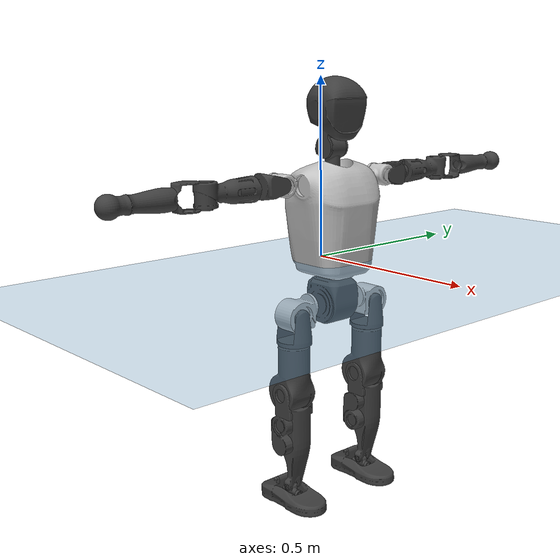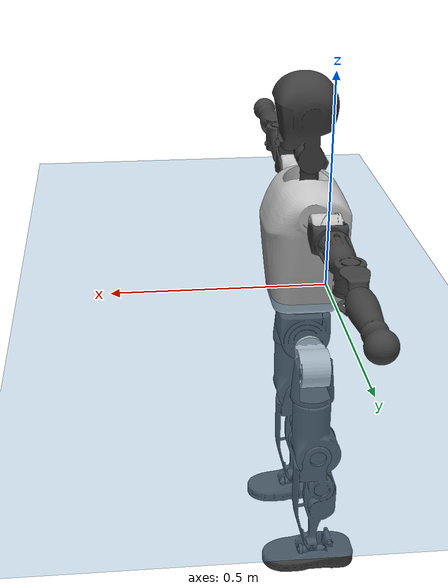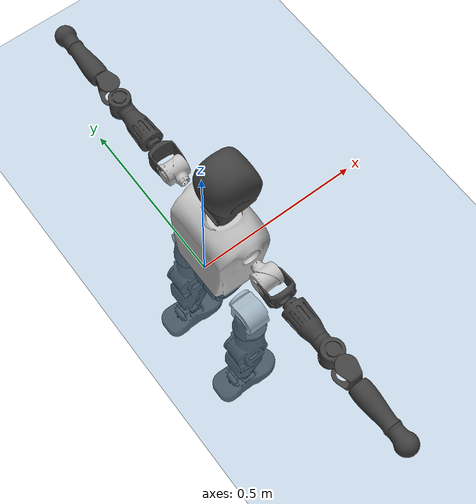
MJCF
<mujoco model="T1">
  <compiler angle="radian" assetdir="assets" balanceinertia="true" inertiafromgeom="false"/>

  <option timestep="0.005" density="1.2" viscosity="2e-05"/>

  <size nkey="1"/>

  <visual>
    <quality shadowsize="8192"/>
    <map shadowclip="0.5"/>
  </visual>

  <default>
    <default class="/">
      <joint armature="0.01" damping="0.01" frictionloss="0.1"/>
      <geom contype="0" conaffinity="0" group="1" solref="-1000 -80"/>
      <site size="0.01 0.005 0.005" group="5"/>
      <general forcelimited="true" biastype="affine" gainprm="25" biasprm="0 -25 -0.6"/>
      <default class="t1">
        <geom rgba="0.25 0.25 0.25 1"/>
        <default class="visual">
          <geom type="mesh" group="2"/>
        </default>
        <default class="collision">
          <geom group="3"/>
        </default>
        <default class="foot">
          <geom size="0.1115 0.05 0.015" type="box" condim="6" group="4" priority="1" solimp="0.015 1 0.015"/>
        </default>
        <default class="reward_collision_sphere">
          <geom group="5" rgba="1 0 0 1"/>
        </default>
      </default>
    </default>
  </default>

  <asset>
    <texture type="skybox" colorspace="auto" name="//unnamed_texture_0" builtin="gradient" rgb1="0.95 0.95 0.95" rgb2="0.95 0.95 0.95" width="100" height="600"/>
    <texture type="2d" colorspace="auto" name="texplane" builtin="checker" rgb1="0.345 0.575 0.748" rgb2="0.345 0.575 0.748" markrgb="1 1 1" width="512" height="512"/>
    <material name="MatPlane" class="/" texture="texplane" texuniform="true" texrepeat="2 2" specular="0.9"/>
    <mesh name="Trunk" class="/" file="Trunk.stl"/>
    <mesh name="H1" class="/" file="H1.stl"/>
    <mesh name="H2" class="/" file="H2.stl"/>
    <mesh name="AL1" class="/" file="AL1.stl"/>
    <mesh name="AL2" class="/" file="AL2.stl"/>
    <mesh name="AL3" class="/" file="AL3.stl"/>
    <mesh name="left_hand_link" class="/" file="left_hand_link.stl"/>
    <mesh name="AR1" class="/" file="AR1.stl"/>
    <mesh name="AR2" class="/" file="AR2.stl"/>
    <mesh name="AR3" class="/" file="AR3.stl"/>
    <mesh name="right_hand_link" class="/" file="right_hand_link.stl"/>
    <mesh name="Waist" class="/" file="Waist.stl"/>
    <mesh name="Hip_Pitch_Left" class="/" file="Hip_Pitch_Left.stl"/>
    <mesh name="Hip_Roll_Left" class="/" file="Hip_Roll_Left.stl"/>
    <mesh name="Hip_Yaw_Left" class="/" file="Hip_Yaw_Left.stl"/>
    <mesh name="Shank_Left" class="/" file="Shank_Left.stl"/>
    <mesh name="Ankle_Cross_Left" class="/" file="Ankle_Cross_Left.stl"/>
    <mesh name="left_foot_link" class="/" file="left_foot_link.stl"/>
    <mesh name="Hip_Pitch_Right" class="/" file="Hip_Pitch_Right.stl"/>
    <mesh name="Hip_Roll_Right" class="/" file="Hip_Roll_Right.stl"/>
    <mesh name="Hip_Yaw_Right" class="/" file="Hip_Yaw_Right.stl"/>
    <mesh name="Shank_Right" class="/" file="Shank_Right.stl"/>
    <mesh name="Ankle_Cross_Right" class="/" file="Ankle_Cross_Right.stl"/>
    <mesh name="right_foot_link" class="/" file="right_foot_link.stl"/>
  </asset>

  <worldbody>
    <geom name="floor" class="/" size="100 100 0.125" type="plane" group="0" material="MatPlane"/>
    <light name="toplight_shadow" class="/" pos="0 0 5" dir="0.0990148 0.0990148 -0.990148" type="directional" ambient="0.04 0.04 0.04" diffuse="0.55 0.55 0.55" specular="0.12 0.12 0.12"/>
    <light name="toplight_fill" class="/" pos="0 0 5" dir="0.0990148 0.0990148 -0.990148" type="directional" castshadow="false" ambient="0.04 0.04 0.04" diffuse="0.3 0.3 0.3" specular="0.08 0.08 0.08"/>
    <body name="trunk" childclass="t1" pos="-0.000287565 -0.00245222 -0.00224305" quat="1 -0.000114355 0.00037708 -3.11486e-05">
      <inertial pos="0.0488735 -0.000334069 0.109767" quat="0.999759 0.000880936 -0.0219188 0.000358573" mass="13.9247" diaginertia="0.0390749 0.324416 0.0624344"/>
      <joint name="//unnamed_joint_0" type="free" armature="0" damping="0" frictionloss="0"/>
      <geom name="//unnamed_geom_1" class="visual" rgba="0.76 0.76 0.76 1" mesh="Trunk"/>
      <geom name="//unnamed_geom_2" class="collision" size="0.0807471 0.107663 0.161494" pos="0.0509671 0 0.124195" type="box"/>
      <geom name="//unnamed_geom_3" class="reward_collision_sphere" size="0.123812" pos="0.0509671 0 0.103496"/>
      <geom name="//unnamed_geom_4" class="reward_collision_sphere" size="0.0161494" pos="0.0509671 0.114365 0"/>
      <geom name="//unnamed_geom_5" class="reward_collision_sphere" size="0.0161494" pos="0.0509671 -0.114365 0"/>
      <geom name="//unnamed_geom_6" class="reward_collision_sphere" size="0.0161494" pos="0.0509671 0.143965 0.186293"/>
      <geom name="//unnamed_geom_7" class="reward_collision_sphere" size="0.0161494" pos="0.0509671 -0.143965 0.186293"/>
      <site name="imu" pos="-0.0139417 -0.0139429 0.00807619" size="0.0107663"/>
      <camera name="track" pos="0 -2.69094 0" quat="0.707107 0.707107 0 0" mode="trackcom"/>
      <camera name="ego_camera" pos="0.103633 0 0.434683" quat="-0.5 -0.5 0.5 0.5"/>
      <body name="H1" pos="0.0497866 -0.00154965 0.252509" quat="1 -0.000140292 -2.37931e-05 -0.000117486">
        <inertial pos="-0.000655324 -0.0023402 0.0588126" quat="0.765446 -0.0084643 -0.00181027 0.643441" mass="0.545789" diaginertia="0.00010732 0.000968812 0.00017623"/>
        <joint name="AAHead_yaw" pos="0 0 0" axis="0.00187684 0.0122377 0.999923" range="-1.56629 1.55306" armature="0.0113701" damping="0.0228863" frictionloss="0.111826"/>
        <geom name="//unnamed_geom_8" class="visual" mesh="H1"/>
        <body name="H2" pos="0.000446952 -0.00257057 0.0620772" quat="1 0.00014304 0.000235169 -0.000349496">
          <inertial pos="0.00350384 0.000875163 0.0998531" quat="0.988771 0.104615 -0.0718413 -0.0789104" mass="0.781173" diaginertia="0.000900228 0.00838345 0.00207785"/>
          <joint name="Head_pitch" pos="0 0 0" axis="-0.00226535 -0.999986 0.00480048" range="-1.20107 0.341096" armature="0.0106143" damping="0.00957819" frictionloss="0.0935177"/>
          <geom name="//unnamed_geom_9" class="visual" mesh="H2"/>
          <geom name="//unnamed_geom_10" class="collision" size="0.0861302" pos="0.00849451 0 0.113846"/>
          <geom name="//unnamed_geom_11" class="reward_collision_sphere" size="0.0968965" pos="0.016989 0 0.103496"/>
        </body>
      </body>
      <body name="AL1" pos="0.0470438 0.142501 0.224125" quat="1 0.00020855 0.000490734 0.000466658">
        <inertial pos="-0.000557474 0.057575 -0.00288314" quat="0.503426 0.495871 -0.506513 0.494084" mass="0.673336" diaginertia="0.000626019 0.0057898 0.00034568"/>
        <joint name="Left_Shoulder_Pitch" pos="0 0 0" axis="-0.00220565 0.999998 -0.000146727" range="-3.28072 1.25209" armature="0.0106839" damping="0" frictionloss="0.108781"/>
        <geom name="//unnamed_geom_12" class="visual" rgba="0.76 0.76 0.76 1" mesh="AL1"/>
        <body name="AL2" pos="0.00105005 0.0650618 -0.00261603" quat="0.999999 -0.000469129 -0.00106194 -0.000359349">
          <inertial pos="0.0040815 0.0509092 0.0026843" quat="0.489504 0.511591 -0.486001 0.512311" mass="0.204301" diaginertia="0.00017363 0.0015035 0.000209766"/>
          <joint name="Left_Shoulder_Roll" pos="0 0 0" axis="-0.99999 -0.00144479 0.00415908" range="-1.57923 1.73563" armature="0.0116851" damping="0.00670118" frictionloss="0.102264"/>
          <geom name="//unnamed_geom_13" class="visual" mesh="AL2"/>
          <body name="AL3" pos="0.000339821 0.0809335 0.00322664" quat="1 0.000398213 -0.000307476 8.60403e-05">
            <inertial pos="-0.00055623 0.113847 -0.00290761" quat="0.71235 0.701756 -0.00820285 -0.00528318" mass="1.33668" diaginertia="0.00568496 0.0581786 0.000770823"/>
            <joint name="Left_Elbow_Pitch" pos="0 0 0" axis="-0.0115576 -0.999911 -0.0066371" stiffness="0.008194" range="-2.26645 2.28257" armature="0.0105419" damping="0.0228181" frictionloss="0.11155"/>
            <geom name="//unnamed_geom_14" class="visual" mesh="AL3"/>
            <geom name="//unnamed_geom_15" class="collision" size="0.0322988 0.0807471" pos="0 0.0672736 0" quat="0.707105 0.707108 0 0" type="cylinder"/>
            <geom name="//unnamed_geom_16" class="reward_collision_sphere" size="0.0387586"/>
            <body name="left_hand_link" pos="0.00293596 0.198834 -9.85127e-06" quat="1 -3.91433e-05 6.40638e-05 -0.000150431">
              <inertial pos="-0.000867693 0.14772 -0.000337663" quat="0.711868 0.702273 -0.00748419 0.00126457" mass="0.411257" diaginertia="0.00353652 0.036337 0.000255893"/>
              <joint name="Left_Elbow_Yaw" pos="0 0 0" axis="-0.00589915 0.00441526 0.999973" range="-2.45726 0.0193665" armature="0.0105268" damping="0.01282" frictionloss="0.118202"/>
              <geom name="//unnamed_geom_17" class="visual" mesh="left_hand_link"/>
              <geom name="//unnamed_geom_18" class="collision" size="0.0322988 0.0942049" pos="0 0.174911 0" quat="0.707105 0.707108 0 0" type="cylinder"/>
              <geom name="//unnamed_geom_19" class="reward_collision_sphere" size="0.0538314"/>
              <geom name="//unnamed_geom_20" class="reward_collision_sphere" size="0.037682" pos="0 0.148002 0"/>
              <geom name="//unnamed_geom_21" class="reward_collision_sphere" size="0.037682" pos="0 0.289276 0"/>
            </body>
          </body>
        </body>
      </body>
      <body name="AR1" pos="0.0514905 -0.142627 0.226297" quat="0.999999 0.000683266 0.000607574 0.000974704">
        <inertial pos="-0.00351663 -0.0602901 -0.000681947" quat="0.504707 0.493837 -0.503332 0.498049" mass="0.69573" diaginertia="0.000626575 0.00609328 0.000369909"/>
        <joint name="Right_Shoulder_Pitch" pos="0 0 0" axis="0.00793205 -0.999961 -0.00386249" stiffness="0.000899934" range="-1.23303 3.32014" armature="0.0106547" damping="0.00289785" frictionloss="0.106544"/>
        <geom name="//unnamed_geom_22" class="visual" rgba="0.76 0.76 0.76 1" mesh="AR1"/>
        <body name="AR2" pos="0.000289237 -0.0621245 0.0026478" quat="1 -9.37727e-05 0.00015023 2.36679e-05">
          <inertial pos="0.000356622 -0.0505929 0.0010561" quat="0.513089 0.488118 -0.509219 0.489057" mass="0.203695" diaginertia="0.000188928 0.00156807 0.000223155"/>
          <joint name="Right_Shoulder_Roll" pos="0 0 0" axis="-0.999999 0.00101576 -0.000106027" range="-1.73557 1.58125" armature="0.0109066" damping="0.00954154" frictionloss="0.11648"/>
          <geom name="//unnamed_geom_23" class="visual" mesh="AR2"/>
          <body name="AR3" pos="0.00269903 -0.0789206 -0.0028157" quat="0.999999 0.00112776 -0.00085203 -0.000412501">
            <inertial pos="0.00180797 -0.114283 -0.00124933" quat="0.708637 0.705451 0.0129446 0.00221861" mass="1.31649" diaginertia="0.00589676 0.0584409 0.000740826"/>
            <joint name="Right_Elbow_Pitch" pos="0 0 0" axis="-0.00625713 0.99993 0.0100071" range="-2.27032 2.30883" armature="0.0105148" damping="0.0123454" frictionloss="0.112027"/>
            <geom name="//unnamed_geom_24" class="visual" mesh="AR3"/>
            <geom name="//unnamed_geom_25" class="collision" size="0.0322988 0.0807471" pos="0 -0.0672736 0" quat="0.707105 0.707108 0 0" type="cylinder"/>
            <geom name="//unnamed_geom_26" class="reward_collision_sphere" size="0.0387586"/>
            <body name="right_hand_link" pos="-0.00115658 -0.19627 -0.000336615" quat="0.999999 0.000541101 -0.0012195 -2.91239e-05">
              <inertial pos="-0.000558272 -0.144956 0.00312322" quat="0.707456 0.706736 0.00216709 0.00501538" mass="0.412815" diaginertia="0.00378224 0.0376405 0.000255016"/>
              <joint name="Right_Elbow_Yaw" pos="0 0 0" axis="0.00369462 0.000803571 0.999993" range="0.0487595 2.45189" armature="0.0112065" damping="0.00494066" frictionloss="0.110296"/>
              <geom name="//unnamed_geom_27" class="visual" mesh="right_hand_link"/>
              <geom name="//unnamed_geom_28" class="collision" size="0.0322988 0.0942049" pos="0 -0.174911 0" quat="0.707105 0.707108 0 0" type="cylinder"/>
              <geom name="//unnamed_geom_29" class="reward_collision_sphere" size="0.0538314"/>
              <geom name="//unnamed_geom_30" class="reward_collision_sphere" size="0.037682" pos="0 -0.148002 0"/>
              <geom name="//unnamed_geom_31" class="reward_collision_sphere" size="0.037682" pos="0 -0.289276 0"/>
            </body>
          </body>
        </body>
      </body>
      <body name="Waist" pos="0.0496176 -0.00229161 -0.118575" quat="0.999999 -0.000368283 0.000625311 0.000979329">
        <inertial pos="0.00282705 0.000797677 0.00837444" quat="0.983436 0.000170524 -0.181254 0.00110393" mass="3.02464" diaginertia="0.00229996 0.0228443 0.00559947"/>
        <joint name="Waist" pos="0 0 0" axis="0.0030776 0.0120199 0.999923" range="-1.6259 1.57092" armature="0.0119697" damping="0.0235939" frictionloss="0.107592"/>
        <geom name="//unnamed_geom_32" class="visual" mesh="Waist"/>
        <body name="Hip_Pitch_Left" pos="0.000689828 0.144695 6.60078e-05" quat="1 9.90235e-05 0.000570184 -0.000226366">
          <inertial pos="0.00129307 -0.00803305 -0.0163843" quat="0.975436 0.219851 0.00582973 0.0125189" mass="1.27937" diaginertia="0.000801697 0.00662927 0.00149221"/>
          <joint name="Left_Hip_Pitch" pos="0 0 0" axis="-0.00547538 0.99998 0.003099" stiffness="0.0098217" range="-1.80022 1.58364" armature="0.0109359" damping="0.0243827" frictionloss="0.12057"/>
          <geom name="//unnamed_geom_33" class="visual" rgba="0.76 0.76 0.76 1" mesh="Hip_Pitch_Left"/>
          <body name="Hip_Roll_Left" pos="0.000229942 -0.00321599 -0.0224422" quat="1 -0.000153647 0.000342132 0.000511017">
            <inertial pos="-0.00193247 -0.000505157 -0.0527048" quat="0.706808 -0.0056863 -0.00608801 0.707356" mass="0.49338" diaginertia="0.000776207 0.00713262 0.000633377"/>
            <joint name="Left_Hip_Roll" pos="0 0 0" axis="-0.99998 -0.0059477 -0.00216017" stiffness="0.00429082" range="-1.56556 0.221986" armature="0.0111469" damping="0" frictionloss="0.092608"/>
            <geom name="//unnamed_geom_34" class="visual" mesh="Hip_Roll_Left"/>
            <geom name="//unnamed_geom_35" class="reward_collision_sphere" size="0.0592145"/>
            <body name="Hip_Yaw_Left" pos="-0.00276328 0.000802995 -0.085914" quat="1 1.52649e-05 0.000154454 -7.73962e-05">
              <inertial pos="-0.00745722 0.00196409 -0.0932771" quat="0.696651 -0.0329157 -0.032167 0.715932" mass="2.66656" diaginertia="0.0116123 0.112111 0.00314275"/>
              <joint name="Left_Hip_Yaw" pos="0 0 0" axis="-0.000491194 -0.000634497 -1" range="-1.06356 1.02603" armature="0.0105524" damping="0" frictionloss="0.105914"/>
              <geom name="//unnamed_geom_36" class="visual" mesh="Hip_Yaw_Left"/>
              <geom name="//unnamed_geom_37" class="collision" size="0.0538314 0.0861302" type="cylinder"/>
              <body name="Shank_Left" pos="-0.0121941 -0.000425286 -0.13594" quat="1 3.28117e-05 -7.62238e-05 -2.20656e-05">
                <inertial pos="-0.0061134 0.00188204 -0.127588" quat="0.997516 0.00156763 -0.0239636 0.0662138" mass="2.20476" diaginertia="0.0156351 0.154508 0.00227662"/>
                <joint name="Left_Knee_Pitch" pos="0 0 0" axis="0.000940034 0.999972 0.00742295" stiffness="0.00862447" range="0.0542389 2.28363" armature="0.0105322" damping="0.0156001" frictionloss="0.100862"/>
                <geom name="//unnamed_geom_38" class="visual" mesh="Shank_Left"/>
                <geom name="//unnamed_geom_39" class="collision" size="0.0538314 0.0807471" pos="0 0 -0.124195" type="cylinder"/>
                <geom name="//unnamed_geom_40" class="reward_collision_sphere" size="0.0699808"/>
                <body name="Ankle_Cross_Left" pos="0.00158714 -0.000283268 -0.288821" quat="1 -8.53715e-06 2.16203e-05 -6.05051e-05">
                  <inertial pos="-0.00570745 0.00235074 -0.00548035" quat="0.434423 0.550103 0.555307 0.447545" mass="0.093804" diaginertia="1.31438e-05 0.00010995 1.3486e-05"/>
                  <joint name="Left_Ankle_Pitch" pos="0 0 0" axis="0.000912186 1 -0.000356079" range="-0.855921 0.362801" armature="0.00939851" damping="0" frictionloss="0.118472"/>
                  <geom name="//unnamed_geom_41" class="visual" mesh="Ankle_Cross_Left"/>
                  <body name="left_foot_link" pos="-0.00365113 -0.00232834 -0.0125247" quat="0.999999 2.05257e-05 0.000715109 0.00111713">
                    <inertial pos="-0.00238371 -0.000189115 -0.011135" quat="-0.00565833 0.626688 -0.0039386 0.779239" mass="0.830904" diaginertia="0.00115875 0.0106994 0.00253334"/>
                    <joint name="Left_Ankle_Roll" pos="0 0 0" axis="-1 0.000418397 -0.000618036" range="-0.453462 0.442745" armature="0.0108465" damping="0" frictionloss="0.107101"/>
                    <geom name="//unnamed_geom_42" class="visual" mesh="left_foot_link"/>
                    <geom name="left_foot" class="foot" size="0.116766 0.0472486 0.0152616" pos="0.00849451 0 -0.0155244"/>
                    <geom name="//unnamed_geom_44" class="reward_collision_sphere" size="0.0559846" pos="0.00849451 0 -0.0155244"/>
                    <geom name="//unnamed_geom_45" class="reward_collision_sphere" size="0.0322988" pos="0.0806978 -0.0309458 -0.0155244"/>
                    <geom name="//unnamed_geom_46" class="reward_collision_sphere" size="0.0322988" pos="-0.0594616 -0.0309458 -0.0155244"/>
                    <site name="left_foot" class="foot" pos="0.00849451 0 -0.0155244" size="0.0107663"/>
                  </body>
                </body>
              </body>
            </body>
          </body>
        </body>
        <body name="Hip_Pitch_Right" pos="0.000287271 -0.140731 0.00245803" quat="1 -3.0505e-05 9.4449e-05 -0.000345273">
          <inertial pos="-0.00153153 0.00799259 -0.0172683" quat="0.973514 -0.228297 0.0113176 0.00469784" mass="1.31067" diaginertia="0.000823038 0.00650576 0.00154256"/>
          <joint name="Right_Hip_Pitch" pos="0 0 0" axis="0.0016218 -0.999995 0.00256883" stiffness="0.0042624" range="-1.56731 1.80354" armature="0.00938805" damping="0.0120883" frictionloss="0.110413"/>
          <geom name="//unnamed_geom_47" class="visual" rgba="0.76 0.76 0.76 1" mesh="Hip_Pitch_Right"/>
          <body name="Hip_Roll_Right" pos="-8.91078e-05 -0.00121299 -0.0221677" quat="0.999999 -5.44388e-06 -0.000826192 -0.00132749">
            <inertial pos="0.00142498 0.00233544 -0.0528877" quat="0.706965 -0.00619573 -0.0063546 0.707193" mass="0.460771" diaginertia="0.000768848 0.00673574 0.000600898"/>
            <joint name="Right_Hip_Roll" pos="0 0 0" axis="-0.999998 0.0022166 0.000293984" range="-0.213095 1.53777" armature="0.0108955" damping="0.0136524" frictionloss="0.122769"/>
            <geom name="//unnamed_geom_48" class="visual" mesh="Hip_Roll_Right"/>
            <geom name="//unnamed_geom_49" class="reward_collision_sphere" size="0.0592145"/>
            <body name="Hip_Yaw_Right" pos="-0.00188454 -0.00183503 -0.0840876" quat="1 -0.000101298 -0.000162211 4.348e-05">
              <inertial pos="-0.00640256 -0.00294508 -0.092889" quat="0.715 -0.0357991 -0.0231556 0.697823" mass="2.80212" diaginertia="0.0114965 0.118073 0.00303955"/>
              <joint name="Right_Hip_Yaw" pos="0 0 0" axis="-0.00318763 -0.00159173 -0.999994" range="-1.00083 1.03229" armature="0.0115343" damping="0.0141317" frictionloss="0.108619"/>
              <geom name="//unnamed_geom_50" class="visual" mesh="Hip_Yaw_Right"/>
              <geom name="//unnamed_geom_51" class="collision" size="0.0538314 0.0861302" type="cylinder"/>
              <body name="Shank_Right" pos="-0.0132263 0.000363552 -0.137971" quat="0.999999 0.000358688 -0.000333405 -0.00126417">
                <inertial pos="-0.00602429 -0.000165164 -0.128955" quat="0.99934 4.27942e-05 -0.0211972 -0.029491" mass="2.22989" diaginertia="0.0151137 0.147754 0.00234814"/>
                <joint name="Right_Knee_Pitch" pos="0 0 0" axis="-0.00332457 -0.999966 0.00748623" stiffness="0.00887243" range="-2.32532 0.0408656" armature="0.0108341" damping="0.0191192" frictionloss="0.107884"/>
                <geom name="//unnamed_geom_52" class="visual" mesh="Shank_Right"/>
                <geom name="//unnamed_geom_53" class="collision" size="0.0538314 0.0807471" pos="0 0 -0.124195" type="cylinder"/>
                <geom name="//unnamed_geom_54" class="reward_collision_sphere" size="0.0699808"/>
                <body name="Ankle_Cross_Right" pos="-0.00194484 0.00132082 -0.28794" quat="1 -0.000209277 0.000236752 -6.02636e-06">
                  <inertial pos="-0.00297465 -0.00241818 -0.00817477" quat="0.433449 0.549644 0.555051 0.449369" mass="0.0965757" diaginertia="1.30547e-05 0.000115669 1.43526e-05"/>
                  <joint name="Right_Ankle_Pitch" pos="0 0 0" axis="0.00888044 -0.999916 0.0094863" range="-0.379397 0.843582" armature="0.0108091" damping="0.00953838" frictionloss="0.101372"/>
                  <geom name="//unnamed_geom_55" class="visual" mesh="Ankle_Cross_Right"/>
                  <body name="right_foot_link" pos="0.000756252 -0.000649752 -0.0143423" quat="1 -7.73355e-05 1.20531e-05 -3.72099e-05">
                    <inertial pos="-4.59022e-05 -0.00138634 -0.00900553" quat="-0.00105686 0.620852 0.00181376 0.783925" mass="0.849166" diaginertia="0.00117173 0.0101146 0.00253917"/>
                    <joint name="Right_Ankle_Roll" pos="0 0 0" axis="-0.999938 0.0108632 -0.00232528" range="-0.445834 0.443657" armature="0.0104786" damping="0.00660374" frictionloss="0.108203"/>
                    <geom name="//unnamed_geom_56" class="visual" mesh="right_foot_link"/>
                    <geom name="right_foot" class="foot" size="0.106414 0.0458513 0.0146396" pos="0.00849451 0 -0.0155244"/>
                    <geom name="//unnamed_geom_58" class="reward_collision_sphere" size="0.0430651"/>
                    <geom name="//unnamed_geom_59" class="reward_collision_sphere" size="0.0322988" pos="0.00849451 0 -0.0155244"/>
                    <geom name="//unnamed_geom_60" class="reward_collision_sphere" size="0.0322988" pos="0.0806978 0.0309458 -0.0155244"/>
                    <geom name="//unnamed_geom_61" class="reward_collision_sphere" size="0.0322988" pos="-0.0594616 0.0309458 -0.0155244"/>
                    <site name="right_foot" class="foot" pos="0.00849451 0 -0.0155244" size="0.0107663"/>
                  </body>
                </body>
              </body>
            </body>
          </body>
        </body>
      </body>
    </body>
  </worldbody>

  <contact>
    <pair class="/" geom1="floor" geom2="left_foot" name="//unnamed_contact_0"/>
    <pair class="/" geom1="floor" geom2="right_foot" name="//unnamed_contact_1"/>
  </contact>

  <actuator>
    <general name="AAHead_yaw" class="/" joint="AAHead_yaw" forcerange="-8.07481 8.07481" gainprm="25.2551" biasprm="0 -25.2551 -0.619808"/>
    <general name="Head_pitch" class="/" joint="Head_pitch" forcerange="-7.45191 7.45191" gainprm="25.2551" biasprm="0 -25.2551 -0.619808"/>
    <general name="Left_Shoulder_Pitch" class="/" joint="Left_Shoulder_Pitch" forcerange="-17.1968 17.1968" gainprm="25.2551" biasprm="0 -25.2551 -0.619808"/>
    <general name="Left_Shoulder_Roll" class="/" joint="Left_Shoulder_Roll" forcerange="-17.6703 17.6703" gainprm="25.2551" biasprm="0 -25.2551 -0.619808"/>
    <general name="Left_Elbow_Pitch" class="/" joint="Left_Elbow_Pitch" forcerange="-19.7347 19.7347" gainprm="25.2551" biasprm="0 -25.2551 -0.619808"/>
    <general name="Left_Elbow_Yaw" class="/" joint="Left_Elbow_Yaw" forcerange="-17.9627 17.9627" gainprm="25.2551" biasprm="0 -25.2551 -0.619808"/>
    <general name="Right_Shoulder_Pitch" class="/" joint="Right_Shoulder_Pitch" forcerange="-21.2988 21.2988" gainprm="25.2551" biasprm="0 -25.2551 -0.619808"/>
    <general name="Right_Shoulder_Roll" class="/" joint="Right_Shoulder_Roll" forcerange="-17.3397 17.3397" gainprm="25.2551" biasprm="0 -25.2551 -0.619808"/>
    <general name="Right_Elbow_Pitch" class="/" joint="Right_Elbow_Pitch" forcerange="-19.8336 19.8336" gainprm="25.2551" biasprm="0 -25.2551 -0.619808"/>
    <general name="Right_Elbow_Yaw" class="/" joint="Right_Elbow_Yaw" forcerange="-20.9534 20.9534" gainprm="25.2551" biasprm="0 -25.2551 -0.619808"/>
    <general name="Waist" class="/" joint="Waist" forcerange="-35.7197 35.7197" gainprm="25.2551" biasprm="0 -25.2551 -0.619808"/>
    <general name="Left_Hip_Pitch" class="/" joint="Left_Hip_Pitch" forcerange="-46.7741 46.7741" gainprm="25.2551" biasprm="0 -25.2551 -0.619808"/>
    <general name="Left_Hip_Roll" class="/" joint="Left_Hip_Roll" forcerange="-34.845 34.845" gainprm="25.2551" biasprm="0 -25.2551 -0.619808"/>
    <general name="Left_Hip_Yaw" class="/" joint="Left_Hip_Yaw" forcerange="-30.1832 30.1832" gainprm="25.2551" biasprm="0 -25.2551 -0.619808"/>
    <general name="Left_Knee_Pitch" class="/" joint="Left_Knee_Pitch" forcerange="-64.1176 64.1176" gainprm="25.2551" biasprm="0 -25.2551 -0.619808"/>
    <general name="Left_Ankle_Pitch" class="/" joint="Left_Ankle_Pitch" forcerange="-21.6588 21.6588" gainprm="25.2551" biasprm="0 -25.2551 -0.619808"/>
    <general name="Left_Ankle_Roll" class="/" joint="Left_Ankle_Roll" forcerange="-16.9373 16.9373" gainprm="25.2551" biasprm="0 -25.2551 -0.619808"/>
    <general name="Right_Hip_Pitch" class="/" joint="Right_Hip_Pitch" forcerange="-48.3042 48.3042" gainprm="25.2551" biasprm="0 -25.2551 -0.619808"/>
    <general name="Right_Hip_Roll" class="/" joint="Right_Hip_Roll" forcerange="-31.765 31.765" gainprm="25.2551" biasprm="0 -25.2551 -0.619808"/>
    <general name="Right_Hip_Yaw" class="/" joint="Right_Hip_Yaw" forcerange="-32.6702 32.6702" gainprm="25.2551" biasprm="0 -25.2551 -0.619808"/>
    <general name="Right_Knee_Pitch" class="/" joint="Right_Knee_Pitch" forcerange="-64.5522 64.5522" gainprm="25.2551" biasprm="0 -25.2551 -0.619808"/>
    <general name="Right_Ankle_Pitch" class="/" joint="Right_Ankle_Pitch" forcerange="-20.8794 20.8794" gainprm="25.2551" biasprm="0 -25.2551 -0.619808"/>
    <general name="Right_Ankle_Roll" class="/" joint="Right_Ankle_Roll" forcerange="-14.4935 14.4935" gainprm="25.2551" biasprm="0 -25.2551 -0.619808"/>
  </actuator>

  <sensor>
    <gyro site="imu" name="imu_angular_velocity"/>
    <velocimeter site="imu" name="imu_linear_velocity"/>
    <framelinvel objtype="site" objname="left_foot" name="left_foot_global_linear_velocity"/>
    <framelinvel objtype="site" objname="right_foot" name="right_foot_global_linear_velocity"/>
  </sensor>

  <keyframe>
    <key name="home" qpos="0 0 0.6385 1 0 0 0 0 0 0 1.4 0 -0.4 0 -1.4 0 0.4 0 -0.4 0 0 0.8 -0.4 0 0.4 0 0 -0.8 0.4 0"/>
  </keyframe>
</mujoco>
